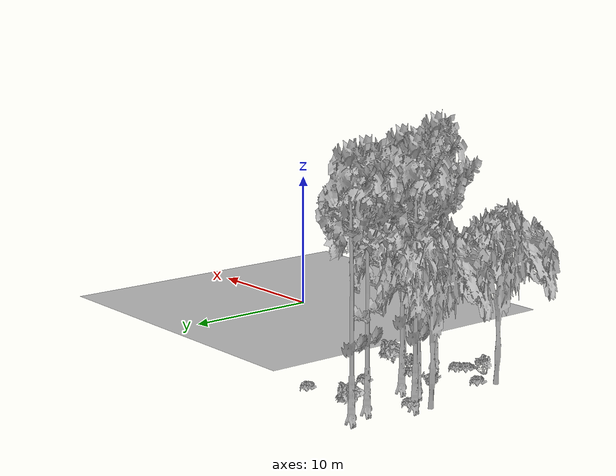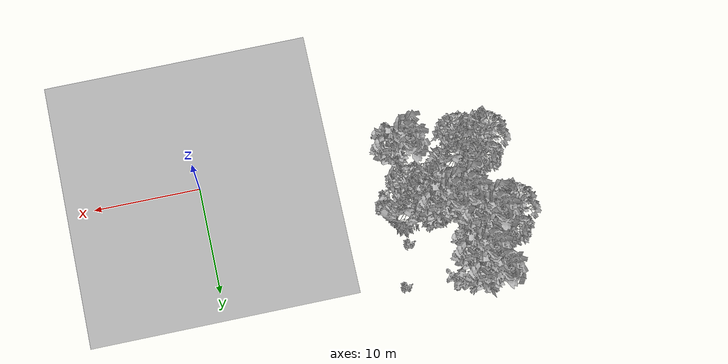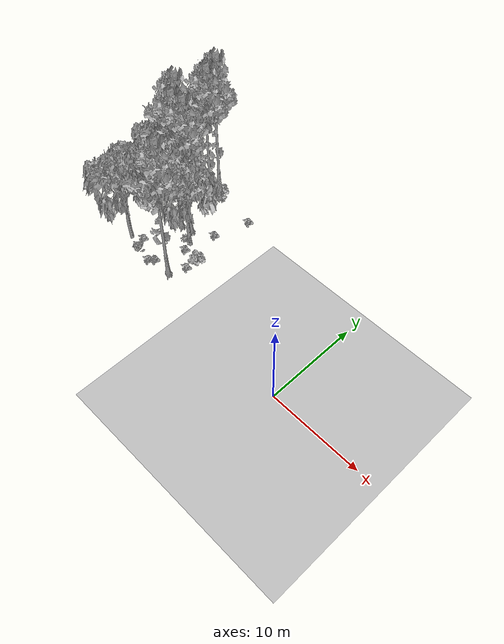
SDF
<sdf version="1.7">
 <world name="default">
  <model name="ground_plane">
   <static>1</static>
   <link name="link">
    <collision name="collision">
     <pose>-50 0 0 0 -0 0</pose>
     <geometry><plane><normal>0 0 1</normal><size>80 80</size></plane></geometry>
     <surface><contact><ode><min_depth>0.01</min_depth><max_vel>0</max_vel></ode></contact></surface>
    </collision>
    <visual name="grass">
     <cast_shadows>0</cast_shadows>
     <geometry>
      <mesh>
       <scale>0.46714285714285714 0.46714285714285714 0.1</scale>
       <uri>file://grass_plane/meshes/grass_plane.dae</uri>
      </mesh>
     </geometry>
    </visual>
   </link>
  </model>
  <model name="Tree 27">
   <static>1</static>
   <pose>-22.259721382093822 12.602933076455649 0 1.57079 -0 0</pose>
   <link name="link">
    <collision name="collision">
     <geometry><mesh><scale>3.5 5 3.5</scale><uri>model://tree_9/meshes/tree_9.obj</uri></mesh></geometry>
    </collision>
    <visual name="visual">
     <geometry><mesh><scale>3.5 5 3.5</scale><uri>model://tree_9/meshes/tree_9.obj</uri></mesh></geometry>
    </visual>
   </link>
  </model>
  <model name="Tree 60">
   <static>1</static>
   <pose>-24.0385599198524 2.8474465721210223 0 1.57079 -0 0</pose>
   <link name="link">
    <collision name="collision">
     <geometry><mesh><scale>3.5 5 3.5</scale><uri>model://tree_2/meshes/tree_2.obj</uri></mesh></geometry>
    </collision>
    <visual name="visual">
     <geometry><mesh><scale>3.5 5 3.5</scale><uri>model://tree_2/meshes/tree_2.obj</uri></mesh></geometry>
    </visual>
   </link>
  </model>
  <model name="Tree 84">
   <static>1</static>
   <pose>-20.341208521438677 7.966974350785549 0 1.57079 -0 0</pose>
   <link name="link">
    <collision name="collision">
     <geometry><mesh><scale>3.5 5 3.5</scale><uri>model://tree_9/meshes/tree_9.obj</uri></mesh></geometry>
    </collision>
    <visual name="visual">
     <geometry><mesh><scale>3.5 5 3.5</scale><uri>model://tree_9/meshes/tree_9.obj</uri></mesh></geometry>
    </visual>
   </link>
  </model>
  <model name="Tree 204">
   <static>1</static>
   <pose>-22.984791983733125 14.489625061466242 0 1.57079 -0 0</pose>
   <link name="link">
    <collision name="collision">
     <geometry><mesh><scale>3.5 5 3.5</scale><uri>model://tree_9/meshes/tree_9.obj</uri></mesh></geometry>
    </collision>
    <visual name="visual">
     <geometry><mesh><scale>3.5 5 3.5</scale><uri>model://tree_9/meshes/tree_9.obj</uri></mesh></geometry>
    </visual>
   </link>
  </model>
  <model name="Tree 363">
   <static>1</static>
   <pose>-23.58943191093931 9.77142005724653 0 1.57079 -0 0</pose>
   <link name="link">
    <collision name="collision">
     <geometry><mesh><scale>3.5 5 3.5</scale><uri>model://tree_9/meshes/tree_9.obj</uri></mesh></geometry>
    </collision>
    <visual name="visual">
     <geometry><mesh><scale>3.5 5 3.5</scale><uri>model://tree_9/meshes/tree_9.obj</uri></mesh></geometry>
    </visual>
   </link>
  </model>
  <model name="Tree 402">
   <static>1</static>
   <pose>-25.058355726393152 9.616675739544917 0 1.57079 -0 0</pose>
   <link name="link">
    <collision name="collision">
     <geometry><mesh><scale>3.5 5 3.5</scale><uri>model://tree_2/meshes/tree_2.obj</uri></mesh></geometry>
    </collision>
    <visual name="visual">
     <geometry><mesh><scale>3.5 5 3.5</scale><uri>model://tree_2/meshes/tree_2.obj</uri></mesh></geometry>
    </visual>
   </link>
  </model>
  <model name="Tree 462">
   <static>1</static>
   <pose>-21.69302029601457 7.764069789425967 0 1.57079 -0 0</pose>
   <link name="link">
    <collision name="collision">
     <geometry><mesh><scale>3.5 5 3.5</scale><uri>model://tree_9/meshes/tree_9.obj</uri></mesh></geometry>
    </collision>
    <visual name="visual">
     <geometry><mesh><scale>3.5 5 3.5</scale><uri>model://tree_9/meshes/tree_9.obj</uri></mesh></geometry>
    </visual>
   </link>
  </model>
  <model name="Tree 504">
   <static>1</static>
   <pose>-17.66148054398331 2.509234476780968 0 1.57079 -0 0</pose>
   <link name="link">
    <collision name="collision">
     <geometry><mesh><scale>3.5 5 3.5</scale><uri>model://tree_9/meshes/tree_9.obj</uri></mesh></geometry>
    </collision>
    <visual name="visual">
     <geometry><mesh><scale>3.5 5 3.5</scale><uri>model://tree_9/meshes/tree_9.obj</uri></mesh></geometry>
    </visual>
   </link>
  </model>
  <model name="Tree 600">
   <static>1</static>
   <pose>-18.94169162332494 6.560545889663267 0 1.57079 -0 0</pose>
   <link name="link">
    <collision name="collision">
     <geometry><mesh><scale>3.5 5 3.5</scale><uri>model://tree_2/meshes/tree_2.obj</uri></mesh></geometry>
    </collision>
    <visual name="visual">
     <geometry><mesh><scale>3.5 5 3.5</scale><uri>model://tree_2/meshes/tree_2.obj</uri></mesh></geometry>
    </visual>
   </link>
  </model>
  <model name="Bush 9">
   <static>1</static>
   <pose>-21.99826932512873 2.0815197934045386 0 1.57079 -0 0</pose>
   <link name="link">
    <collision name="collision">
     <geometry><mesh><scale>2 2 2</scale><uri>model://bush_4/meshes/bush_4.obj</uri></mesh></geometry>
     <surface><contact><collide_without_contact>false</collide_without_contact></contact></surface>
    </collision>
    <visual name="visual">
     <geometry><mesh><scale>2 2 2</scale><uri>model://bush_4/meshes/bush_4.obj</uri></mesh></geometry>
    </visual>
   </link>
  </model>
  <model name="Bush 19">
   <static>1</static>
   <pose>-21.868241009762798 13.54118825401276 0 1.57079 -0 0</pose>
   <link name="link">
    <collision name="collision">
     <geometry><mesh><scale>2 2 2</scale><uri>model://bush_1/meshes/bush_1.obj</uri></mesh></geometry>
     <surface><contact><collide_without_contact>false</collide_without_contact></contact></surface>
    </collision>
    <visual name="visual">
     <geometry><mesh><scale>2 2 2</scale><uri>model://bush_1/meshes/bush_1.obj</uri></mesh></geometry>
    </visual>
   </link>
  </model>
  <model name="Bush 94">
   <static>1</static>
   <pose>-23.5542265542803 10.075227943130969 0 1.57079 -0 0</pose>
   <link name="link">
    <collision name="collision">
     <geometry><mesh><scale>2 2 2</scale><uri>model://bush_2/meshes/bush_2.obj</uri></mesh></geometry>
     <surface><contact><collide_without_contact>false</collide_without_contact></contact></surface>
    </collision>
    <visual name="visual">
     <geometry><mesh><scale>2 2 2</scale><uri>model://bush_2/meshes/bush_2.obj</uri></mesh></geometry>
    </visual>
   </link>
  </model>
  <model name="Bush 177">
   <static>1</static>
   <pose>-16.877603607690858 12.997140511823076 0 1.57079 -0 0</pose>
   <link name="link">
    <collision name="collision">
     <geometry><mesh><scale>2 2 2</scale><uri>model://bush_2/meshes/bush_2.obj</uri></mesh></geometry>
     <surface><contact><collide_without_contact>false</collide_without_contact></contact></surface>
    </collision>
    <visual name="visual">
     <geometry><mesh><scale>2 2 2</scale><uri>model://bush_2/meshes/bush_2.obj</uri></mesh></geometry>
    </visual>
   </link>
  </model>
  <model name="Bush 220">
   <static>1</static>
   <pose>-20.36132102636836 2.037853930303413 0 1.57079 -0 0</pose>
   <link name="link">
    <collision name="collision">
     <geometry><mesh><scale>2 2 2</scale><uri>model://bush_2/meshes/bush_2.obj</uri></mesh></geometry>
     <surface><contact><collide_without_contact>false</collide_without_contact></contact></surface>
    </collision>
    <visual name="visual">
     <geometry><mesh><scale>2 2 2</scale><uri>model://bush_2/meshes/bush_2.obj</uri></mesh></geometry>
    </visual>
   </link>
  </model>
  <model name="Bush 237">
   <static>1</static>
   <pose>-20.980669977584743 13.014173632115856 0 1.57079 -0 0</pose>
   <link name="link">
    <collision name="collision">
     <geometry><mesh><scale>2 2 2</scale><uri>model://bush_0/meshes/bush_0.obj</uri></mesh></geometry>
     <surface><contact><collide_without_contact>false</collide_without_contact></contact></surface>
    </collision>
    <visual name="visual">
     <geometry><mesh><scale>2 2 2</scale><uri>model://bush_0/meshes/bush_0.obj</uri></mesh></geometry>
    </visual>
   </link>
  </model>
  <model name="Bush 370">
   <static>1</static>
   <pose>-19.87531298826838 2.5169996293279766 0 1.57079 -0 0</pose>
   <link name="link">
    <collision name="collision">
     <geometry><mesh><scale>2 2 2</scale><uri>model://bush_2/meshes/bush_2.obj</uri></mesh></geometry>
     <surface><contact><collide_without_contact>false</collide_without_contact></contact></surface>
    </collision>
    <visual name="visual">
     <geometry><mesh><scale>2 2 2</scale><uri>model://bush_2/meshes/bush_2.obj</uri></mesh></geometry>
    </visual>
   </link>
  </model>
  <model name="Bush 402">
   <static>1</static>
   <pose>-16.79418415437606 4.155882861858544 0 1.57079 -0 0</pose>
   <link name="link">
    <collision name="collision">
     <geometry><mesh><scale>2 2 2</scale><uri>model://bush_2/meshes/bush_2.obj</uri></mesh></geometry>
     <surface><contact><collide_without_contact>false</collide_without_contact></contact></surface>
    </collision>
    <visual name="visual">
     <geometry><mesh><scale>2 2 2</scale><uri>model://bush_2/meshes/bush_2.obj</uri></mesh></geometry>
    </visual>
   </link>
  </model>
  <model name="Bush 514">
   <static>1</static>
   <pose>-16.382202226284733 5.1751402794589225 0 1.57079 -0 0</pose>
   <link name="link">
    <collision name="collision">
     <geometry><mesh><scale>2 2 2</scale><uri>model://bush_1/meshes/bush_1.obj</uri></mesh></geometry>
     <surface><contact><collide_without_contact>false</collide_without_contact></contact></surface>
    </collision>
    <visual name="visual">
     <geometry><mesh><scale>2 2 2</scale><uri>model://bush_1/meshes/bush_1.obj</uri></mesh></geometry>
    </visual>
   </link>
  </model>
  <model name="Bush 519">
   <static>1</static>
   <pose>-18.713683442570524 5.638345164408058 0 1.57079 -0 0</pose>
   <link name="link">
    <collision name="collision">
     <geometry><mesh><scale>2 2 2</scale><uri>model://bush_2/meshes/bush_2.obj</uri></mesh></geometry>
     <surface><contact><collide_without_contact>false</collide_without_contact></contact></surface>
    </collision>
    <visual name="visual">
     <geometry><mesh><scale>2 2 2</scale><uri>model://bush_2/meshes/bush_2.obj</uri></mesh></geometry>
    </visual>
   </link>
  </model>
  <model name="Bush 548">
   <static>1</static>
   <pose>-22.977362277092656 3.5259201501664705 0 1.57079 -0 0</pose>
   <link name="link">
    <collision name="collision">
     <geometry><mesh><scale>2 2 2</scale><uri>model://bush_2/meshes/bush_2.obj</uri></mesh></geometry>
     <surface><contact><collide_without_contact>false</collide_without_contact></contact></surface>
    </collision>
    <visual name="visual">
     <geometry><mesh><scale>2 2 2</scale><uri>model://bush_2/meshes/bush_2.obj</uri></mesh></geometry>
    </visual>
   </link>
  </model>
  <model name="Bush 566">
   <static>1</static>
   <pose>-18.96742444176199 6.346859921316941 0 1.57079 -0 0</pose>
   <link name="link">
    <collision name="collision">
     <geometry><mesh><scale>2 2 2</scale><uri>model://bush_5/meshes/bush_5.obj</uri></mesh></geometry>
     <surface><contact><collide_without_contact>false</collide_without_contact></contact></surface>
    </collision>
    <visual name="visual">
     <geometry><mesh><scale>2 2 2</scale><uri>model://bush_5/meshes/bush_5.obj</uri></mesh></geometry>
    </visual>
   </link>
  </model>
  <model name="Bush 579">
   <static>1</static>
   <pose>-22.288203845825574 7.154832333472569 0 1.57079 -0 0</pose>
   <link name="link">
    <collision name="collision">
     <geometry><mesh><scale>2 2 2</scale><uri>model://bush_0/meshes/bush_0.obj</uri></mesh></geometry>
     <surface><contact><collide_without_contact>false</collide_without_contact></contact></surface>
    </collision>
    <visual name="visual">
     <geometry><mesh><scale>2 2 2</scale><uri>model://bush_0/meshes/bush_0.obj</uri></mesh></geometry>
    </visual>
   </link>
  </model>
  <model name="Bush 591">
   <static>1</static>
   <pose>-18.0308537528215 9.12450623336212 0 1.57079 -0 0</pose>
   <link name="link">
    <collision name="collision">
     <geometry><mesh><scale>2 2 2</scale><uri>model://bush_2/meshes/bush_2.obj</uri></mesh></geometry>
     <surface><contact><collide_without_contact>false</collide_without_contact></contact></surface>
    </collision>
    <visual name="visual">
     <geometry><mesh><scale>2 2 2</scale><uri>model://bush_2/meshes/bush_2.obj</uri></mesh></geometry>
    </visual>
   </link>
  </model>
 </world>
</sdf>
